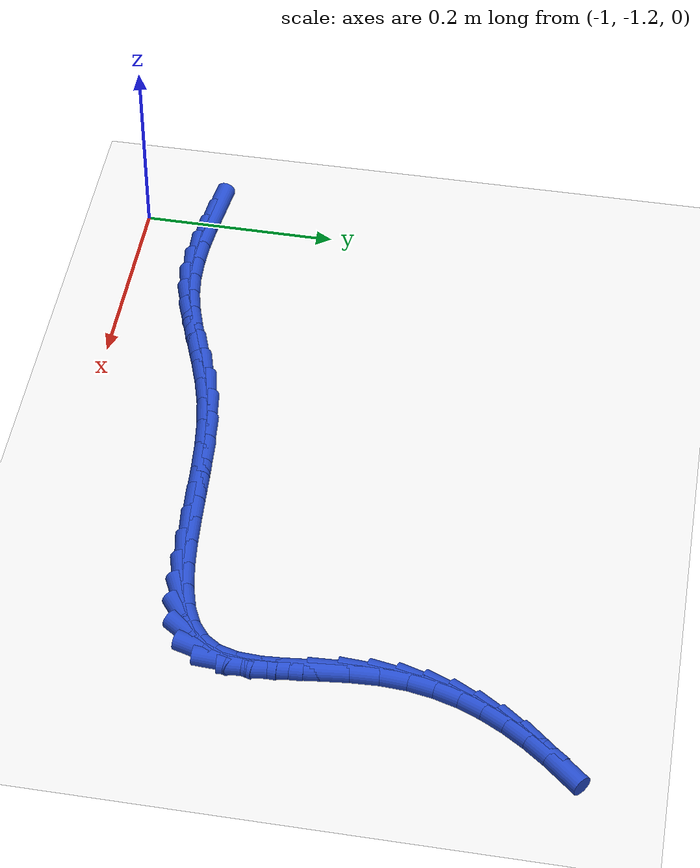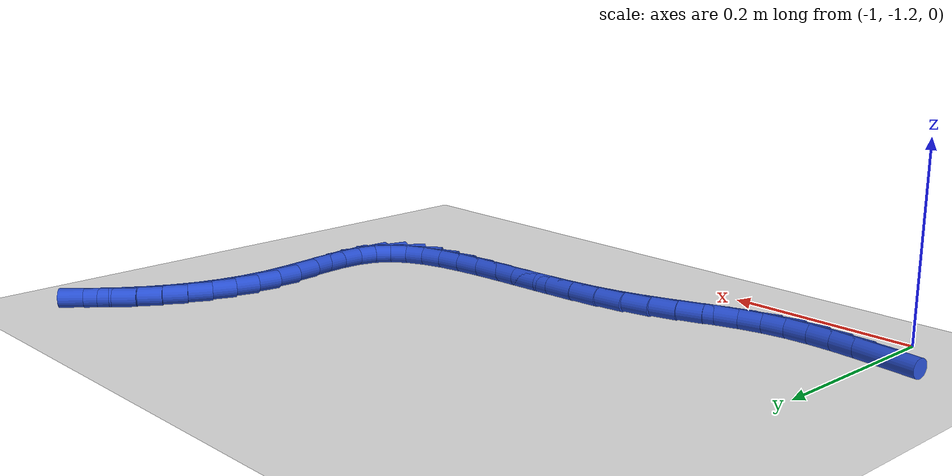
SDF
<sdf version="1.6">
 <world name="default">
  <model name="ground_plane">
   <static>1</static>
   <link name="link">
    <collision name="collision">
     <geometry><plane><normal>0 0 1</normal><size>100 100</size></plane></geometry>
     <surface><friction><ode><mu>100</mu><mu2>50</mu2></ode></friction></surface>
    </collision>
    <visual name="visual">
     <cast_shadows>0</cast_shadows>
     <geometry><plane><normal>0 0 1</normal><size>100 100</size></plane></geometry>
     <material>
      <script><uri>file://media/materials/scripts/gazebo.material</uri><name>Gazebo/WhiteGlow</name></script>
     </material>
    </visual>
   </link>
  </model>
  <model name="line">
   <link name="link_223">
    <pose>-1.008293038501563 -1.1287133959493438 0.01 0 1.57 -0.11188979386751723</pose>
    <collision name="collision">
     <geometry><cylinder><radius>0.01</radius><length>0.08</length></cylinder></geometry>
    </collision>
    <visual name="visual">
     <material>
      <script><name>Gazebo/Blue</name><uri>file://media/materials/scripts/gazebo.material</uri></script>
     </material>
     <geometry><cylinder><radius>0.01</radius><length>0.08</length></cylinder></geometry>
    </visual>
   </link>
   <link name="link_224">
    <pose>-0.9821255855496176 -1.131653546687347 0.01 0 1.57 -0.07626050473945732</pose>
    <collision name="collision">
     <geometry><cylinder><radius>0.01</radius><length>0.08</length></cylinder></geometry>
    </collision>
    <visual name="visual">
     <material>
      <script><name>Gazebo/Blue</name><uri>file://media/materials/scripts/gazebo.material</uri></script>
     </material>
     <geometry><cylinder><radius>0.01</radius><length>0.08</length></cylinder></geometry>
    </visual>
   </link>
   <link name="link_225">
    <pose>-0.9562922041991331 -1.1336274413758047 0.01 0 1.57 -0.022637252702739554</pose>
    <collision name="collision">
     <geometry><cylinder><radius>0.01</radius><length>0.08</length></cylinder></geometry>
    </collision>
    <visual name="visual">
     <material>
      <script><name>Gazebo/Blue</name><uri>file://media/materials/scripts/gazebo.material</uri></script>
     </material>
     <geometry><cylinder><radius>0.01</radius><length>0.08</length></cylinder></geometry>
    </visual>
   </link>
   <link name="link_226">
    <pose>-0.9308854404548867 -1.1342026789696489 0.01 0 1.57 0.050416927145387945</pose>
    <collision name="collision">
     <geometry><cylinder><radius>0.01</radius><length>0.08</length></cylinder></geometry>
    </collision>
    <visual name="visual">
     <material>
      <script><name>Gazebo/Blue</name><uri>file://media/materials/scripts/gazebo.material</uri></script>
     </material>
     <geometry><cylinder><radius>0.01</radius><length>0.08</length></cylinder></geometry>
    </visual>
   </link>
   <link name="link_227">
    <pose>-0.9059978403216551 -1.1329468584238112 0.01 0 1.57 0.14394801642909213</pose>
    <collision name="collision">
     <geometry><cylinder><radius>0.01</radius><length>0.08</length></cylinder></geometry>
    </collision>
    <visual name="visual">
     <material>
      <script><name>Gazebo/Blue</name><uri>file://media/materials/scripts/gazebo.material</uri></script>
     </material>
     <geometry><cylinder><radius>0.01</radius><length>0.08</length></cylinder></geometry>
    </visual>
   </link>
   <link name="link_228">
    <pose>-0.8817217549074732 -1.1294280258273237 0.01 0 1.57 0.24531468707958548</pose>
    <collision name="collision">
     <geometry><cylinder><radius>0.01</radius><length>0.08</length></cylinder></geometry>
    </collision>
    <visual name="visual">
     <material>
      <script><name>Gazebo/Blue</name><uri>file://media/materials/scripts/gazebo.material</uri></script>
     </material>
     <geometry><cylinder><radius>0.01</radius><length>0.08</length></cylinder></geometry>
    </visual>
   </link>
   <link name="link_229">
    <pose>-0.858026792615621 -1.1234958248387472 0.01 0 1.57 0.318196602657281</pose>
    <collision name="collision">
     <geometry><cylinder><radius>0.01</radius><length>0.08</length></cylinder></geometry>
    </collision>
    <visual name="visual">
     <material>
      <script><name>Gazebo/Blue</name><uri>file://media/materials/scripts/gazebo.material</uri></script>
     </material>
     <geometry><cylinder><radius>0.01</radius><length>0.08</length></cylinder></geometry>
    </visual>
   </link>
   <link name="link_230">
    <pose>-0.8345500159831272 -1.115762829246625 0.01 0 1.57 0.35559282549196336</pose>
    <collision name="collision">
     <geometry><cylinder><radius>0.01</radius><length>0.08</length></cylinder></geometry>
    </collision>
    <visual name="visual">
     <material>
      <script><name>Gazebo/Blue</name><uri>file://media/materials/scripts/gazebo.material</uri></script>
     </material>
     <geometry><cylinder><radius>0.01</radius><length>0.08</length></cylinder></geometry>
    </visual>
   </link>
   <link name="link_231">
    <pose>-0.8108727163021743 -1.1069695638002477 0.01 0 1.57 0.35883602598373826</pose>
    <collision name="collision">
     <geometry><cylinder><radius>0.01</radius><length>0.08</length></cylinder></geometry>
    </collision>
    <visual name="visual">
     <material>
      <script><name>Gazebo/Blue</name><uri>file://media/materials/scripts/gazebo.material</uri></script>
     </material>
     <geometry><cylinder><radius>0.01</radius><length>0.08</length></cylinder></geometry>
    </visual>
   </link>
   <link name="link_232">
    <pose>-0.7865761848649451 -1.0978565532489057 0.01 0 1.57 0.33051371815056724</pose>
    <collision name="collision">
     <geometry><cylinder><radius>0.01</radius><length>0.08</length></cylinder></geometry>
    </collision>
    <visual name="visual">
     <material>
      <script><name>Gazebo/Blue</name><uri>file://media/materials/scripts/gazebo.material</uri></script>
     </material>
     <geometry><cylinder><radius>0.01</radius><length>0.08</length></cylinder></geometry>
    </visual>
   </link>
   <link name="link_233">
    <pose>-0.7612417129636234 -1.0891643223418903 0.01 0 1.57 0.2740264479357126</pose>
    <collision name="collision">
     <geometry><cylinder><radius>0.01</radius><length>0.08</length></cylinder></geometry>
    </collision>
    <visual name="visual">
     <material>
      <script><name>Gazebo/Blue</name><uri>file://media/materials/scripts/gazebo.material</uri></script>
     </material>
     <geometry><cylinder><radius>0.01</radius><length>0.08</length></cylinder></geometry>
    </visual>
   </link>
   <link name="link_234">
    <pose>-0.7344505918903907 -1.0816333958284918 0.01 0 1.57 0.19659560437511714</pose>
    <collision name="collision">
     <geometry><cylinder><radius>0.01</radius><length>0.08</length></cylinder></geometry>
    </collision>
    <visual name="visual">
     <material>
      <script><name>Gazebo/Blue</name><uri>file://media/materials/scripts/gazebo.material</uri></script>
     </material>
     <geometry><cylinder><radius>0.01</radius><length>0.08</length></cylinder></geometry>
    </visual>
   </link>
   <link name="link_235">
    <pose>-0.7058409557748516 -1.0759352666954212 0.01 0 1.57 0.12987852827334762</pose>
    <collision name="collision">
     <geometry><cylinder><radius>0.01</radius><length>0.08</length></cylinder></geometry>
    </collision>
    <visual name="visual">
     <material>
      <script><name>Gazebo/Blue</name><uri>file://media/materials/scripts/gazebo.material</uri></script>
     </material>
     <geometry><cylinder><radius>0.01</radius><length>0.08</length></cylinder></geometry>
    </visual>
   </link>
   <link name="link_236">
    <pose>-0.6756663538467346 -1.0719940481185524 0.01 0 1.57 0.08712938275742751</pose>
    <collision name="collision">
     <geometry><cylinder><radius>0.01</radius><length>0.08</length></cylinder></geometry>
    </collision>
    <visual name="visual">
     <material>
      <script><name>Gazebo/Blue</name><uri>file://media/materials/scripts/gazebo.material</uri></script>
     </material>
     <geometry><cylinder><radius>0.01</radius><length>0.08</length></cylinder></geometry>
    </visual>
   </link>
   <link name="link_237">
    <pose>-0.6445568388805558 -1.0692766153086413 0.01 0 1.57 0.06464756531838127</pose>
    <collision name="collision">
     <geometry><cylinder><radius>0.01</radius><length>0.08</length></cylinder></geometry>
    </collision>
    <visual name="visual">
     <material>
      <script><name>Gazebo/Blue</name><uri>file://media/materials/scripts/gazebo.material</uri></script>
     </material>
     <geometry><cylinder><radius>0.01</radius><length>0.08</length></cylinder></geometry>
    </visual>
   </link>
   <link name="link_238">
    <pose>-0.6131478773029438 -1.0672432689639058 0.01 0 1.57 0.06071640787357203</pose>
    <collision name="collision">
     <geometry><cylinder><radius>0.01</radius><length>0.08</length></cylinder></geometry>
    </collision>
    <visual name="visual">
     <material>
      <script><name>Gazebo/Blue</name><uri>file://media/materials/scripts/gazebo.material</uri></script>
     </material>
     <geometry><cylinder><radius>0.01</radius><length>0.08</length></cylinder></geometry>
    </visual>
   </link>
   <link name="link_239">
    <pose>-0.582074935540527 -1.0653543097825646 0.01 0 1.57 0.07574057793866686</pose>
    <collision name="collision">
     <geometry><cylinder><radius>0.01</radius><length>0.08</length></cylinder></geometry>
    </collision>
    <visual name="visual">
     <material>
      <script><name>Gazebo/Blue</name><uri>file://media/materials/scripts/gazebo.material</uri></script>
     </material>
     <geometry><cylinder><radius>0.01</radius><length>0.08</length></cylinder></geometry>
    </visual>
   </link>
   <link name="link_240">
    <pose>-0.5519734800199338 -1.0630700384628355 0.01 0 1.57 0.11250203111307204</pose>
    <collision name="collision">
     <geometry><cylinder><radius>0.01</radius><length>0.08</length></cylinder></geometry>
    </collision>
    <visual name="visual">
     <material>
      <script><name>Gazebo/Blue</name><uri>file://media/materials/scripts/gazebo.material</uri></script>
     </material>
     <geometry><cylinder><radius>0.01</radius><length>0.08</length></cylinder></geometry>
    </visual>
   </link>
   <link name="link_241">
    <pose>-0.5234789771677929 -1.0598507557029377 0.01 0 1.57 0.17693481897832034</pose>
    <collision name="collision">
     <geometry><cylinder><radius>0.01</radius><length>0.08</length></cylinder></geometry>
    </collision>
    <visual name="visual">
     <material>
      <script><name>Gazebo/Blue</name><uri>file://media/materials/scripts/gazebo.material</uri></script>
     </material>
     <geometry><cylinder><radius>0.01</radius><length>0.08</length></cylinder></geometry>
    </visual>
   </link>
   <link name="link_242">
    <pose>-0.4972268934107325 -1.0551567622010887 0.01 0 1.57 0.27948827611010707</pose>
    <collision name="collision">
     <geometry><cylinder><radius>0.01</radius><length>0.08</length></cylinder></geometry>
    </collision>
    <visual name="visual">
     <material>
      <script><name>Gazebo/Blue</name><uri>file://media/materials/scripts/gazebo.material</uri></script>
     </material>
     <geometry><cylinder><radius>0.01</radius><length>0.08</length></cylinder></geometry>
    </visual>
   </link>
   <link name="link_243">
    <pose>-0.47385269517538114 -1.0484483586555071 0.01 0 1.57 0.4363839328756877</pose>
    <collision name="collision">
     <geometry><cylinder><radius>0.01</radius><length>0.08</length></cylinder></geometry>
    </collision>
    <visual name="visual">
     <material>
      <script><name>Gazebo/Blue</name><uri>file://media/materials/scripts/gazebo.material</uri></script>
     </material>
     <geometry><cylinder><radius>0.01</radius><length>0.08</length></cylinder></geometry>
    </visual>
   </link>
   <link name="link_244">
    <pose>-0.4539918488883673 -1.039185845764411 0.01 0 1.57 0.6664081241262418</pose>
    <collision name="collision">
     <geometry><cylinder><radius>0.01</radius><length>0.08</length></cylinder></geometry>
    </collision>
    <visual name="visual">
     <material>
      <script><name>Gazebo/Blue</name><uri>file://media/materials/scripts/gazebo.material</uri></script>
     </material>
     <geometry><cylinder><radius>0.01</radius><length>0.08</length></cylinder></geometry>
    </visual>
   </link>
   <link name="link_245">
    <pose>-0.43827982097631935 -1.0268295242260193 0.01 0 1.57 0.9712858797091823</pose>
    <collision name="collision">
     <geometry><cylinder><radius>0.01</radius><length>0.08</length></cylinder></geometry>
    </collision>
    <visual name="visual">
     <material>
      <script><name>Gazebo/Blue</name><uri>file://media/materials/scripts/gazebo.material</uri></script>
     </material>
     <geometry><cylinder><radius>0.01</radius><length>0.08</length></cylinder></geometry>
    </visual>
   </link>
   <link name="link_246">
    <pose>-0.42735207786586576 -1.0108396947385498 0.01 0 1.57 1.2953822518155707</pose>
    <collision name="collision">
     <geometry><cylinder><radius>0.01</radius><length>0.08</length></cylinder></geometry>
    </collision>
    <visual name="visual">
     <material>
      <script><name>Gazebo/Blue</name><uri>file://media/materials/scripts/gazebo.material</uri></script>
     </material>
     <geometry><cylinder><radius>0.01</radius><length>0.08</length></cylinder></geometry>
    </visual>
   </link>
   <link name="link_247">
    <pose>-0.42168594691403133 -0.9907893867330172 0.01 0 1.57 1.517768851194638</pose>
    <collision name="collision">
     <geometry><cylinder><radius>0.01</radius><length>0.08</length></cylinder></geometry>
    </collision>
    <visual name="visual">
     <material>
      <script><name>Gazebo/Blue</name><uri>file://media/materials/scripts/gazebo.material</uri></script>
     </material>
     <geometry><cylinder><radius>0.01</radius><length>0.08</length></cylinder></geometry>
    </visual>
   </link>
   <link name="link_248">
    <pose>-0.420433685793041 -0.9671961996749562 0.01 0 1.57 -1.5076705726884199</pose>
    <collision name="collision">
     <geometry><cylinder><radius>0.01</radius><length>0.08</length></cylinder></geometry>
    </collision>
    <visual name="visual">
     <material>
      <script><name>Gazebo/Blue</name><uri>file://media/materials/scripts/gazebo.material</uri></script>
     </material>
     <geometry><cylinder><radius>0.01</radius><length>0.08</length></cylinder></geometry>
    </visual>
   </link>
   <link name="link_249">
    <pose>-0.4220864433125043 -0.9410490015438092 0.01 0 1.57 -1.461376367878888</pose>
    <collision name="collision">
     <geometry><cylinder><radius>0.01</radius><length>0.08</length></cylinder></geometry>
    </collision>
    <visual name="visual">
     <material>
      <script><name>Gazebo/Blue</name><uri>file://media/materials/scripts/gazebo.material</uri></script>
     </material>
     <geometry><cylinder><radius>0.01</radius><length>0.08</length></cylinder></geometry>
    </visual>
   </link>
   <link name="link_250">
    <pose>-0.42513050554303466 -0.9133401267008967 0.01 0 1.57 -1.4678434706169858</pose>
    <collision name="collision">
     <geometry><cylinder><radius>0.01</radius><length>0.08</length></cylinder></geometry>
    </collision>
    <visual name="visual">
     <material>
      <script><name>Gazebo/Blue</name><uri>file://media/materials/scripts/gazebo.material</uri></script>
     </material>
     <geometry><cylinder><radius>0.01</radius><length>0.08</length></cylinder></geometry>
    </visual>
   </link>
   <link name="link_251">
    <pose>-0.4280521585552458 -0.8850619095075387 0.01 0 1.57 -1.5246786467323674</pose>
    <collision name="collision">
     <geometry><cylinder><radius>0.01</radius><length>0.08</length></cylinder></geometry>
    </collision>
    <visual name="visual">
     <material>
      <script><name>Gazebo/Blue</name><uri>file://media/materials/scripts/gazebo.material</uri></script>
     </material>
     <geometry><cylinder><radius>0.01</radius><length>0.08</length></cylinder></geometry>
    </visual>
   </link>
   <link name="link_252">
    <pose>-0.42933768841982234 -0.8572066843250112 0.01 0 1.57 1.5118076021725486</pose>
    <collision name="collision">
     <geometry><cylinder><radius>0.01</radius><length>0.08</length></cylinder></geometry>
    </collision>
    <visual name="visual">
     <material>
      <script><name>Gazebo/Blue</name><uri>file://media/materials/scripts/gazebo.material</uri></script>
     </material>
     <geometry><cylinder><radius>0.01</radius><length>0.08</length></cylinder></geometry>
    </visual>
   </link>
   <link name="link_253">
    <pose>-0.4277653558462342 -0.830582809545544 0.01 0 1.57 1.3954264206328044</pose>
    <collision name="collision">
     <geometry><cylinder><radius>0.01</radius><length>0.08</length></cylinder></geometry>
    </collision>
    <visual name="visual">
     <material>
      <script><name>Gazebo/Blue</name><uri>file://media/materials/scripts/gazebo.material</uri></script>
     </material>
     <geometry><cylinder><radius>0.01</radius><length>0.08</length></cylinder></geometry>
    </visual>
   </link>
   <link name="link_254">
    <pose>-0.42327913391716204 -0.8052641172190067 0.01 0 1.57 1.2820661010372845</pose>
    <collision name="collision">
     <geometry><cylinder><radius>0.01</radius><length>0.08</length></cylinder></geometry>
    </collision>
    <visual name="visual">
     <material>
      <script><name>Gazebo/Blue</name><uri>file://media/materials/scripts/gazebo.material</uri></script>
     </material>
     <geometry><cylinder><radius>0.01</radius><length>0.08</length></cylinder></geometry>
    </visual>
   </link>
   <link name="link_255">
    <pose>-0.41611387828579144 -0.7811411515487279 0.01 0 1.57 1.175605407093654</pose>
    <collision name="collision">
     <geometry><cylinder><radius>0.01</radius><length>0.08</length></cylinder></geometry>
    </collision>
    <visual name="visual">
     <material>
      <script><name>Gazebo/Blue</name><uri>file://media/materials/scripts/gazebo.material</uri></script>
     </material>
     <geometry><cylinder><radius>0.01</radius><length>0.08</length></cylinder></geometry>
    </visual>
   </link>
   <link name="link_256">
    <pose>-0.4065044446053084 -0.7581044567380373 0.01 0 1.57 1.0789532195497789</pose>
    <collision name="collision">
     <geometry><cylinder><radius>0.01</radius><length>0.08</length></cylinder></geometry>
    </collision>
    <visual name="visual">
     <material>
      <script><name>Gazebo/Blue</name><uri>file://media/materials/scripts/gazebo.material</uri></script>
     </material>
     <geometry><cylinder><radius>0.01</radius><length>0.08</length></cylinder></geometry>
    </visual>
   </link>
   <link name="link_257">
    <pose>-0.3946856885288988 -0.7360445769902642 0.01 0 1.57 0.9938214498988597</pose>
    <collision name="collision">
     <geometry><cylinder><radius>0.01</radius><length>0.08</length></cylinder></geometry>
    </collision>
    <visual name="visual">
     <material>
      <script><name>Gazebo/Blue</name><uri>file://media/materials/scripts/gazebo.material</uri></script>
     </material>
     <geometry><cylinder><radius>0.01</radius><length>0.08</length></cylinder></geometry>
    </visual>
   </link>
   <link name="link_258">
    <pose>-0.38089246570974866 -0.7148520565087381 0.01 0 1.57 0.9208475581139115</pose>
    <collision name="collision">
     <geometry><cylinder><radius>0.01</radius><length>0.08</length></cylinder></geometry>
    </collision>
    <visual name="visual">
     <material>
      <script><name>Gazebo/Blue</name><uri>file://media/materials/scripts/gazebo.material</uri></script>
     </material>
     <geometry><cylinder><radius>0.01</radius><length>0.08</length></cylinder></geometry>
    </visual>
   </link>
   <link name="link_259">
    <pose>-0.3653596318010437 -0.694417439496788 0.01 0 1.57 0.8599014909447679</pose>
    <collision name="collision">
     <geometry><cylinder><radius>0.01</radius><length>0.08</length></cylinder></geometry>
    </collision>
    <visual name="visual">
     <material>
      <script><name>Gazebo/Blue</name><uri>file://media/materials/scripts/gazebo.material</uri></script>
     </material>
     <geometry><cylinder><radius>0.01</radius><length>0.08</length></cylinder></geometry>
    </visual>
   </link>
  </model>
 </world>
</sdf>
